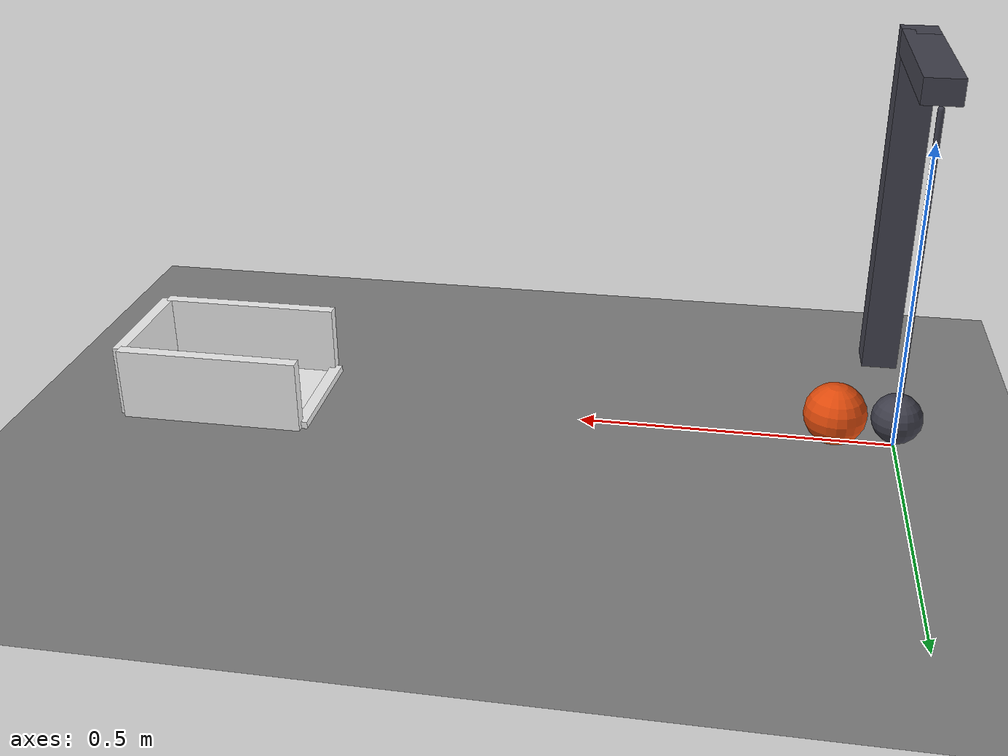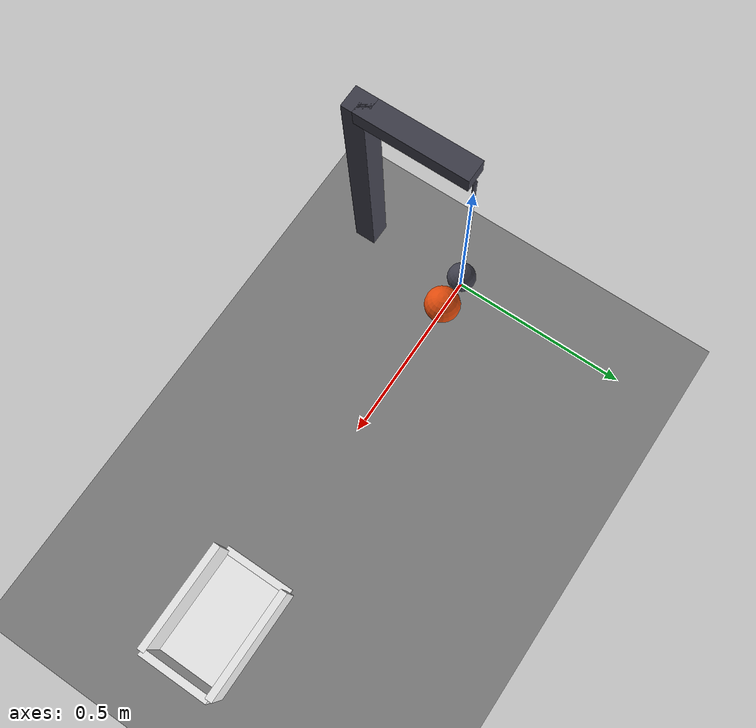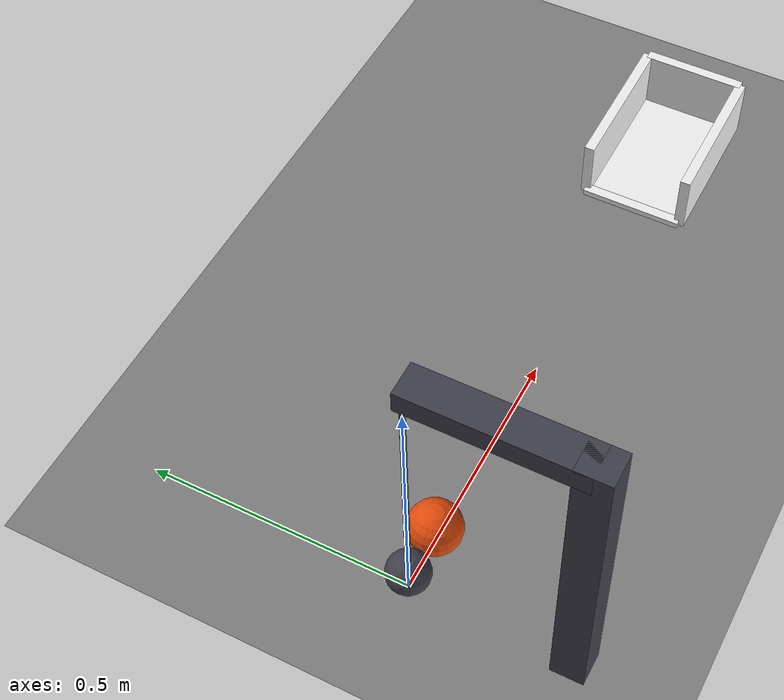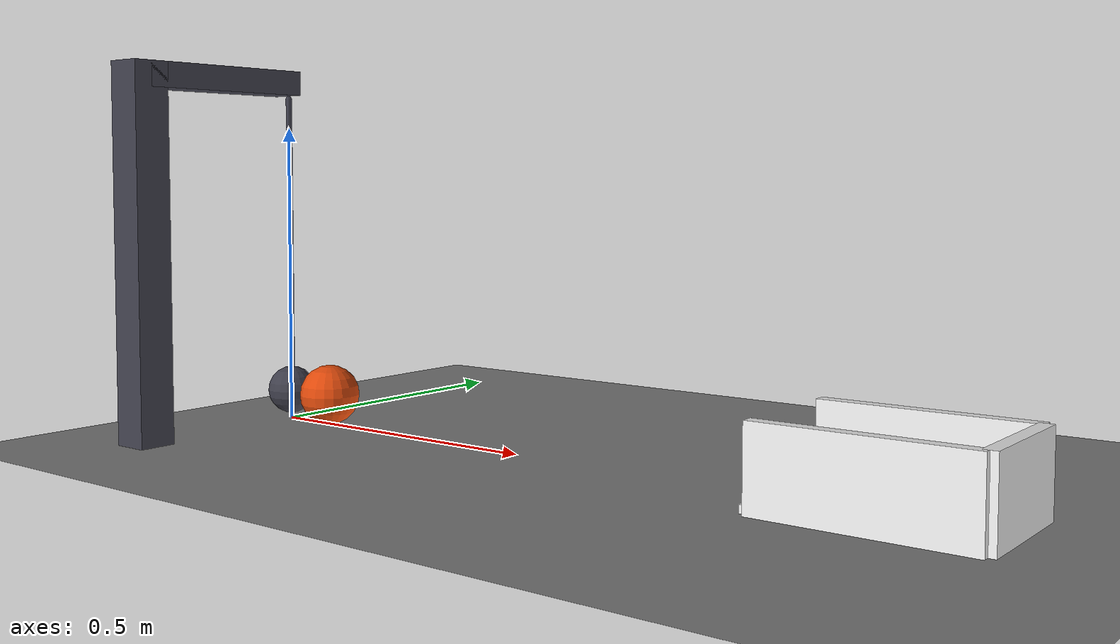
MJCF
<mujoco model="pendulum_knocks_ball_into_cup">
  <compiler angle="radian"/>
  <option timestep="0.002"/>
  <worldbody>
    <geom name="floor" type="plane" size="6 6 0.1" friction="0.8 0.001 0.0002"/>
    <geom name="pendulum_stand_arm" type="box" pos="0 -0.15 0.575" size="0.03 0.15 0.02" rgba="0.25 0.25 0.3 1"/>
    <geom name="pendulum_stand_post" type="box" pos="0 -0.3 0.2975" size="0.03 0.03 0.2975" rgba="0.25 0.25 0.3 1"/>
    <body name="pendulum" pos="0 0 0.55">
      <joint name="pivot" type="hinge" pos="0 0 0" axis="0 1 0"/>
      <geom name="pendulum_bob" type="sphere" pos="0 0 -0.5" size="0.04" mass="1" rgba="0.25 0.25 0.3 1"/>
      <geom name="pendulum_rod" type="capsule" size="0.005" fromto="0 0 0 0 0 -0.46" mass="0.1" rgba="0.25 0.25 0.3 1"/>
    </body>
    <body name="ball" pos="0.095 0 0.05">
      <freejoint/>
      <geom name="ball" type="sphere" pos="0 0 0" size="0.05" mass="0.2" condim="6" friction="0.8 0.001 0.0002" rgba="0.9 0.3 0.05 1"/>
    </body>
    <body name="cup">
      <geom name="cup_base" type="box" pos="1.095 0 0.0025" size="0.15 0.1 0.0025" friction="0.8 0.01 0.015" solref="0.01 1" rgba="0.95 0.95 0.95 1"/>
      <geom name="cup_near_wall" type="box" pos="0.945 0 0.006" size="0.01 0.1 0.006" friction="0.8 0.01 0.015" solref="0.01 1" rgba="0.95 0.95 0.95 1"/>
      <geom name="cup_far_wall" type="box" pos="1.245 0 0.06" size="0.01 0.1 0.06" friction="0.8 0.01 0.015" solref="0.01 1" rgba="0.95 0.95 0.95 1"/>
      <geom name="cup_left_wall" type="box" pos="1.095 0.1 0.06" size="0.15 0.01 0.06" friction="0.8 0.01 0.015" solref="0.01 1" rgba="0.95 0.95 0.95 1"/>
      <geom name="cup_right_wall" type="box" pos="1.095 -0.1 0.06" size="0.15 0.01 0.06" friction="0.8 0.01 0.015" solref="0.01 1" rgba="0.95 0.95 0.95 1"/>
    </body>
  </worldbody>
  <keyframe>
    <key name="start" qpos="0.698132 0.095 0 0.05 1 0 0 0" qvel="0 0 0 0 0 0 0"/>
  </keyframe>
</mujoco>
